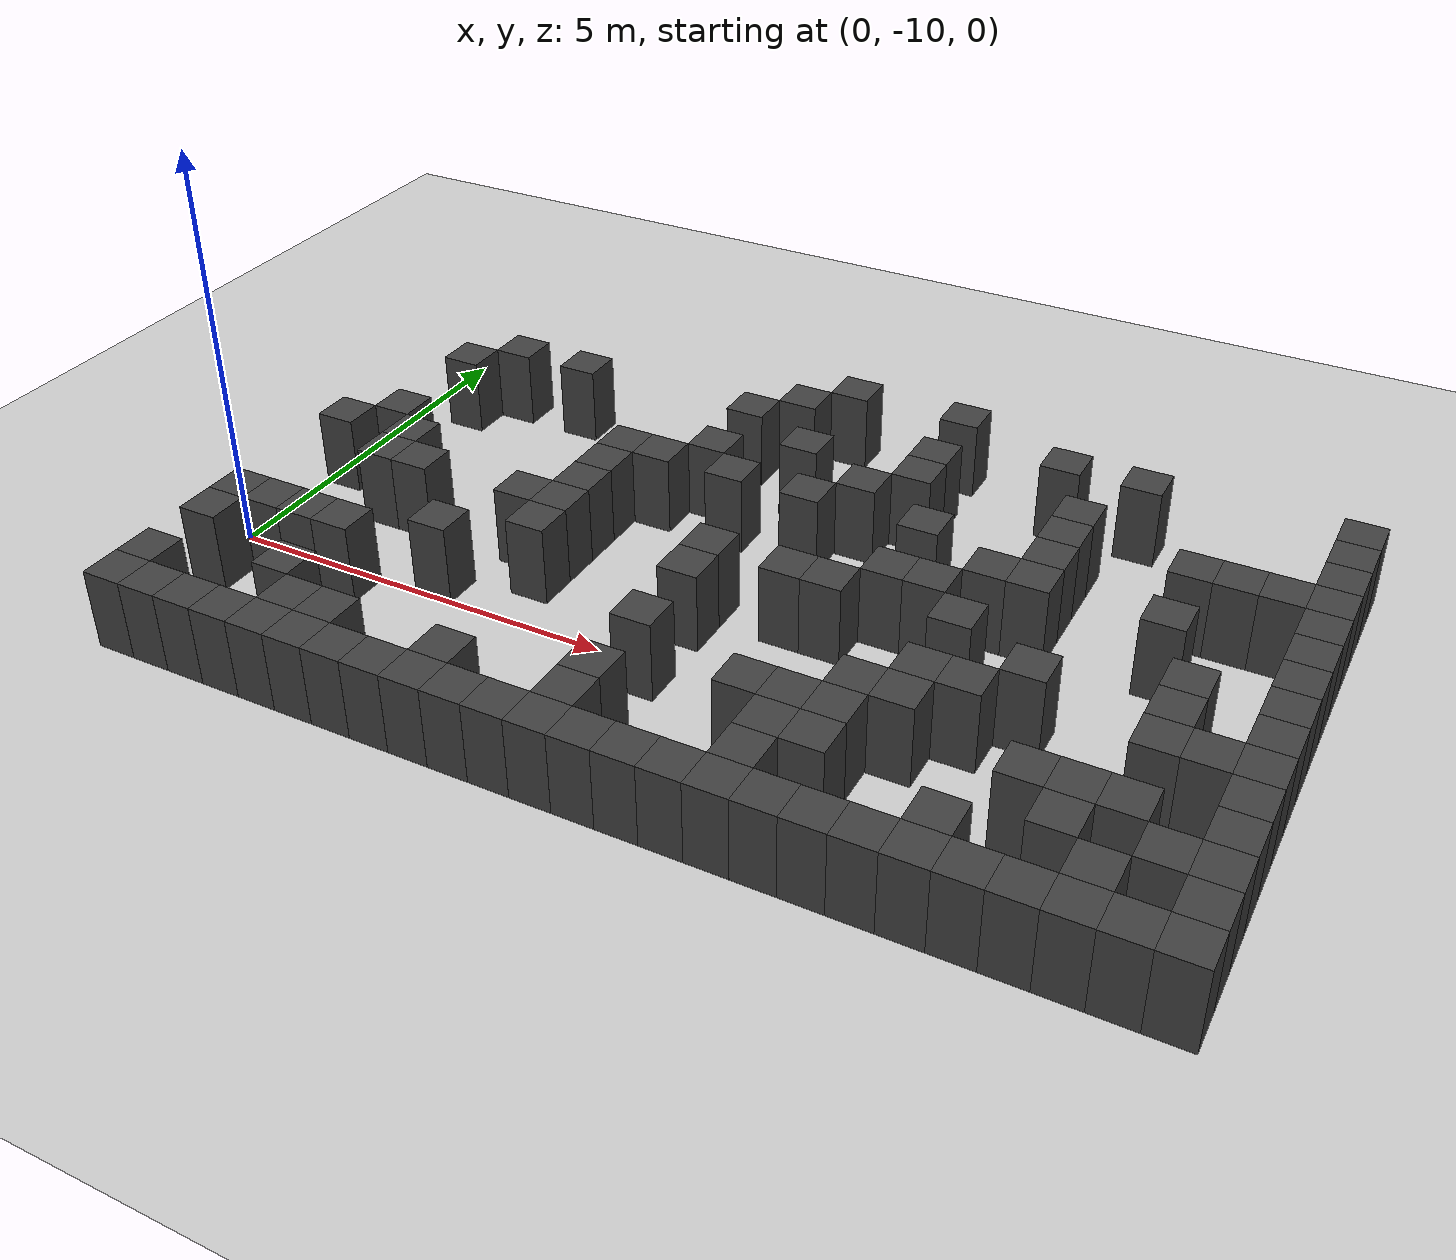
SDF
<sdf version="1.7">
 <world name="map_4822">
  <model name="ground_plane">
   <static>true</static>
   <link name="link">
    <collision name="collision">
     <geometry><plane><normal>0 0 1</normal><size>200 200</size></plane></geometry>
    </collision>
    <visual name="visual">
     <geometry><plane><normal>0 0 1</normal><size>200 200</size></plane></geometry>
     <material><ambient>0.8 0.8 0.8 1</ambient><diffuse>0.8 0.8 0.8 1</diffuse></material>
    </visual>
   </link>
  </model>
  <model name="maze_environment">
   <static>true</static>
   <link name="wall_484">
    <pose>5.750 -4.750 0.500 0 0 0</pose>
    <collision name="col"><geometry><box><size>0.5 0.5 1.0</size></box></geometry></collision>
    <visual name="vis">
     <geometry><box><size>0.5 0.5 1.0</size></box></geometry>
     <material><ambient>0.15 0.15 0.15 1</ambient><diffuse>0.25 0.25 0.25 1</diffuse></material>
    </visual>
   </link>
   <link name="wall_485">
    <pose>7.250 -4.750 0.500 0 0 0</pose>
    <collision name="col"><geometry><box><size>0.5 0.5 1.0</size></box></geometry></collision>
    <visual name="vis">
     <geometry><box><size>0.5 0.5 1.0</size></box></geometry>
     <material><ambient>0.15 0.15 0.15 1</ambient><diffuse>0.25 0.25 0.25 1</diffuse></material>
    </visual>
   </link>
   <link name="wall_498">
    <pose>5.250 -5.250 0.500 0 0 0</pose>
    <collision name="col"><geometry><box><size>0.5 0.5 1.0</size></box></geometry></collision>
    <visual name="vis">
     <geometry><box><size>0.5 0.5 1.0</size></box></geometry>
     <material><ambient>0.15 0.15 0.15 1</ambient><diffuse>0.25 0.25 0.25 1</diffuse></material>
    </visual>
   </link>
   <link name="wall_499">
    <pose>8.750 -5.250 0.500 0 0 0</pose>
    <collision name="col"><geometry><box><size>0.5 0.5 1.0</size></box></geometry></collision>
    <visual name="vis">
     <geometry><box><size>0.5 0.5 1.0</size></box></geometry>
     <material><ambient>0.15 0.15 0.15 1</ambient><diffuse>0.25 0.25 0.25 1</diffuse></material>
    </visual>
   </link>
   <link name="wall_500">
    <pose>9.750 -5.250 0.500 0 0 0</pose>
    <collision name="col"><geometry><box><size>0.5 0.5 1.0</size></box></geometry></collision>
    <visual name="vis">
     <geometry><box><size>0.5 0.5 1.0</size></box></geometry>
     <material><ambient>0.15 0.15 0.15 1</ambient><diffuse>0.25 0.25 0.25 1</diffuse></material>
    </visual>
   </link>
   <link name="wall_501">
    <pose>12.250 -5.250 0.500 0 0 0</pose>
    <collision name="col"><geometry><box><size>0.5 0.5 1.0</size></box></geometry></collision>
    <visual name="vis">
     <geometry><box><size>0.5 0.5 1.0</size></box></geometry>
     <material><ambient>0.15 0.15 0.15 1</ambient><diffuse>0.25 0.25 0.25 1</diffuse></material>
    </visual>
   </link>
   <link name="wall_508">
    <pose>1.250 -5.750 0.500 0 0 0</pose>
    <collision name="col"><geometry><box><size>0.5 0.5 1.0</size></box></geometry></collision>
    <visual name="vis">
     <geometry><box><size>0.5 0.5 1.0</size></box></geometry>
     <material><ambient>0.15 0.15 0.15 1</ambient><diffuse>0.25 0.25 0.25 1</diffuse></material>
    </visual>
   </link>
   <link name="wall_509">
    <pose>2.250 -5.750 0.500 0 0 0</pose>
    <collision name="col"><geometry><box><size>0.5 0.5 1.0</size></box></geometry></collision>
    <visual name="vis">
     <geometry><box><size>0.5 0.5 1.0</size></box></geometry>
     <material><ambient>0.15 0.15 0.15 1</ambient><diffuse>0.25 0.25 0.25 1</diffuse></material>
    </visual>
   </link>
   <link name="wall_510">
    <pose>4.750 -5.750 0.500 0 0 0</pose>
    <collision name="col"><geometry><box><size>0.5 0.5 1.0</size></box></geometry></collision>
    <visual name="vis">
     <geometry><box><size>0.5 0.5 1.0</size></box></geometry>
     <material><ambient>0.15 0.15 0.15 1</ambient><diffuse>0.25 0.25 0.25 1</diffuse></material>
    </visual>
   </link>
   <link name="wall_511">
    <pose>7.250 -5.750 0.500 0 0 0</pose>
    <collision name="col"><geometry><box><size>0.5 0.5 1.0</size></box></geometry></collision>
    <visual name="vis">
     <geometry><box><size>0.5 0.5 1.0</size></box></geometry>
     <material><ambient>0.15 0.15 0.15 1</ambient><diffuse>0.25 0.25 0.25 1</diffuse></material>
    </visual>
   </link>
   <link name="wall_512">
    <pose>12.250 -5.750 0.500 0 0 0</pose>
    <collision name="col"><geometry><box><size>0.5 0.5 1.0</size></box></geometry></collision>
    <visual name="vis">
     <geometry><box><size>0.5 0.5 1.0</size></box></geometry>
     <material><ambient>0.15 0.15 0.15 1</ambient><diffuse>0.25 0.25 0.25 1</diffuse></material>
    </visual>
   </link>
   <link name="wall_521">
    <pose>0.750 -6.250 0.500 0 0 0</pose>
    <collision name="col"><geometry><box><size>0.5 0.5 1.0</size></box></geometry></collision>
    <visual name="vis">
     <geometry><box><size>0.5 0.5 1.0</size></box></geometry>
     <material><ambient>0.15 0.15 0.15 1</ambient><diffuse>0.25 0.25 0.25 1</diffuse></material>
    </visual>
   </link>
   <link name="wall_522">
    <pose>5.750 -6.250 0.500 0 0 0</pose>
    <collision name="col"><geometry><box><size>0.5 0.5 1.0</size></box></geometry></collision>
    <visual name="vis">
     <geometry><box><size>0.5 0.5 1.0</size></box></geometry>
     <material><ambient>0.15 0.15 0.15 1</ambient><diffuse>0.25 0.25 0.25 1</diffuse></material>
    </visual>
   </link>
   <link name="wall_523">
    <pose>7.250 -6.250 0.500 0 0 0</pose>
    <collision name="col"><geometry><box><size>0.5 0.5 1.0</size></box></geometry></collision>
    <visual name="vis">
     <geometry><box><size>0.5 0.5 1.0</size></box></geometry>
     <material><ambient>0.15 0.15 0.15 1</ambient><diffuse>0.25 0.25 0.25 1</diffuse></material>
    </visual>
   </link>
   <link name="wall_524">
    <pose>9.250 -6.250 0.500 0 0 0</pose>
    <collision name="col"><geometry><box><size>0.5 0.5 1.0</size></box></geometry></collision>
    <visual name="vis">
     <geometry><box><size>0.5 0.5 1.0</size></box></geometry>
     <material><ambient>0.15 0.15 0.15 1</ambient><diffuse>0.25 0.25 0.25 1</diffuse></material>
    </visual>
   </link>
   <link name="wall_525">
    <pose>12.250 -6.250 0.500 0 0 0</pose>
    <collision name="col"><geometry><box><size>0.5 0.5 1.0</size></box></geometry></collision>
    <visual name="vis">
     <geometry><box><size>0.5 0.5 1.0</size></box></geometry>
     <material><ambient>0.15 0.15 0.15 1</ambient><diffuse>0.25 0.25 0.25 1</diffuse></material>
    </visual>
   </link>
   <link name="wall_533">
    <pose>4.750 -6.750 0.500 0 0 0</pose>
    <collision name="col"><geometry><box><size>0.5 0.5 1.0</size></box></geometry></collision>
    <visual name="vis">
     <geometry><box><size>0.5 0.5 1.0</size></box></geometry>
     <material><ambient>0.15 0.15 0.15 1</ambient><diffuse>0.25 0.25 0.25 1</diffuse></material>
    </visual>
   </link>
   <link name="wall_534">
    <pose>6.750 -6.750 0.500 0 0 0</pose>
    <collision name="col"><geometry><box><size>0.5 0.5 1.0</size></box></geometry></collision>
    <visual name="vis">
     <geometry><box><size>0.5 0.5 1.0</size></box></geometry>
     <material><ambient>0.15 0.15 0.15 1</ambient><diffuse>0.25 0.25 0.25 1</diffuse></material>
    </visual>
   </link>
   <link name="wall_535">
    <pose>9.250 -6.750 0.500 0 0 0</pose>
    <collision name="col"><geometry><box><size>0.5 0.5 1.0</size></box></geometry></collision>
    <visual name="vis">
     <geometry><box><size>0.5 0.5 1.0</size></box></geometry>
     <material><ambient>0.15 0.15 0.15 1</ambient><diffuse>0.25 0.25 0.25 1</diffuse></material>
    </visual>
   </link>
   <link name="wall_536">
    <pose>10.750 -6.750 0.500 0 0 0</pose>
    <collision name="col"><geometry><box><size>0.5 0.5 1.0</size></box></geometry></collision>
    <visual name="vis">
     <geometry><box><size>0.5 0.5 1.0</size></box></geometry>
     <material><ambient>0.15 0.15 0.15 1</ambient><diffuse>0.25 0.25 0.25 1</diffuse></material>
    </visual>
   </link>
   <link name="wall_537">
    <pose>11.250 -6.750 0.500 0 0 0</pose>
    <collision name="col"><geometry><box><size>0.5 0.5 1.0</size></box></geometry></collision>
    <visual name="vis">
     <geometry><box><size>0.5 0.5 1.0</size></box></geometry>
     <material><ambient>0.15 0.15 0.15 1</ambient><diffuse>0.25 0.25 0.25 1</diffuse></material>
    </visual>
   </link>
   <link name="wall_538">
    <pose>11.750 -6.750 0.500 0 0 0</pose>
    <collision name="col"><geometry><box><size>0.5 0.5 1.0</size></box></geometry></collision>
    <visual name="vis">
     <geometry><box><size>0.5 0.5 1.0</size></box></geometry>
     <material><ambient>0.15 0.15 0.15 1</ambient><diffuse>0.25 0.25 0.25 1</diffuse></material>
    </visual>
   </link>
   <link name="wall_539">
    <pose>12.250 -6.750 0.500 0 0 0</pose>
    <collision name="col"><geometry><box><size>0.5 0.5 1.0</size></box></geometry></collision>
    <visual name="vis">
     <geometry><box><size>0.5 0.5 1.0</size></box></geometry>
     <material><ambient>0.15 0.15 0.15 1</ambient><diffuse>0.25 0.25 0.25 1</diffuse></material>
    </visual>
   </link>
   <link name="wall_546">
    <pose>3.750 -7.250 0.500 0 0 0</pose>
    <collision name="col"><geometry><box><size>0.5 0.5 1.0</size></box></geometry></collision>
    <visual name="vis">
     <geometry><box><size>0.5 0.5 1.0</size></box></geometry>
     <material><ambient>0.15 0.15 0.15 1</ambient><diffuse>0.25 0.25 0.25 1</diffuse></material>
    </visual>
   </link>
   <link name="wall_547">
    <pose>4.250 -7.250 0.500 0 0 0</pose>
    <collision name="col"><geometry><box><size>0.5 0.5 1.0</size></box></geometry></collision>
    <visual name="vis">
     <geometry><box><size>0.5 0.5 1.0</size></box></geometry>
     <material><ambient>0.15 0.15 0.15 1</ambient><diffuse>0.25 0.25 0.25 1</diffuse></material>
    </visual>
   </link>
   <link name="wall_548">
    <pose>5.250 -7.250 0.500 0 0 0</pose>
    <collision name="col"><geometry><box><size>0.5 0.5 1.0</size></box></geometry></collision>
    <visual name="vis">
     <geometry><box><size>0.5 0.5 1.0</size></box></geometry>
     <material><ambient>0.15 0.15 0.15 1</ambient><diffuse>0.25 0.25 0.25 1</diffuse></material>
    </visual>
   </link>
   <link name="wall_549">
    <pose>6.250 -7.250 0.500 0 0 0</pose>
    <collision name="col"><geometry><box><size>0.5 0.5 1.0</size></box></geometry></collision>
    <visual name="vis">
     <geometry><box><size>0.5 0.5 1.0</size></box></geometry>
     <material><ambient>0.15 0.15 0.15 1</ambient><diffuse>0.25 0.25 0.25 1</diffuse></material>
    </visual>
   </link>
   <link name="wall_550">
    <pose>7.750 -7.250 0.500 0 0 0</pose>
    <collision name="col"><geometry><box><size>0.5 0.5 1.0</size></box></geometry></collision>
    <visual name="vis">
     <geometry><box><size>0.5 0.5 1.0</size></box></geometry>
     <material><ambient>0.15 0.15 0.15 1</ambient><diffuse>0.25 0.25 0.25 1</diffuse></material>
    </visual>
   </link>
   <link name="wall_551">
    <pose>9.250 -7.250 0.500 0 0 0</pose>
    <collision name="col"><geometry><box><size>0.5 0.5 1.0</size></box></geometry></collision>
    <visual name="vis">
     <geometry><box><size>0.5 0.5 1.0</size></box></geometry>
     <material><ambient>0.15 0.15 0.15 1</ambient><diffuse>0.25 0.25 0.25 1</diffuse></material>
    </visual>
   </link>
   <link name="wall_552">
    <pose>12.250 -7.250 0.500 0 0 0</pose>
    <collision name="col"><geometry><box><size>0.5 0.5 1.0</size></box></geometry></collision>
    <visual name="vis">
     <geometry><box><size>0.5 0.5 1.0</size></box></geometry>
     <material><ambient>0.15 0.15 0.15 1</ambient><diffuse>0.25 0.25 0.25 1</diffuse></material>
    </visual>
   </link>
   <link name="wall_555">
    <pose>0.750 -7.750 0.500 0 0 0</pose>
    <collision name="col"><geometry><box><size>0.5 0.5 1.0</size></box></geometry></collision>
    <visual name="vis">
     <geometry><box><size>0.5 0.5 1.0</size></box></geometry>
     <material><ambient>0.15 0.15 0.15 1</ambient><diffuse>0.25 0.25 0.25 1</diffuse></material>
    </visual>
   </link>
   <link name="wall_556">
    <pose>3.750 -7.750 0.500 0 0 0</pose>
    <collision name="col"><geometry><box><size>0.5 0.5 1.0</size></box></geometry></collision>
    <visual name="vis">
     <geometry><box><size>0.5 0.5 1.0</size></box></geometry>
     <material><ambient>0.15 0.15 0.15 1</ambient><diffuse>0.25 0.25 0.25 1</diffuse></material>
    </visual>
   </link>
   <link name="wall_557">
    <pose>8.750 -7.750 0.500 0 0 0</pose>
    <collision name="col"><geometry><box><size>0.5 0.5 1.0</size></box></geometry></collision>
    <visual name="vis">
     <geometry><box><size>0.5 0.5 1.0</size></box></geometry>
     <material><ambient>0.15 0.15 0.15 1</ambient><diffuse>0.25 0.25 0.25 1</diffuse></material>
    </visual>
   </link>
   <link name="wall_558">
    <pose>9.250 -7.750 0.500 0 0 0</pose>
    <collision name="col"><geometry><box><size>0.5 0.5 1.0</size></box></geometry></collision>
    <visual name="vis">
     <geometry><box><size>0.5 0.5 1.0</size></box></geometry>
     <material><ambient>0.15 0.15 0.15 1</ambient><diffuse>0.25 0.25 0.25 1</diffuse></material>
    </visual>
   </link>
   <link name="wall_559">
    <pose>10.750 -7.750 0.500 0 0 0</pose>
    <collision name="col"><geometry><box><size>0.5 0.5 1.0</size></box></geometry></collision>
    <visual name="vis">
     <geometry><box><size>0.5 0.5 1.0</size></box></geometry>
     <material><ambient>0.15 0.15 0.15 1</ambient><diffuse>0.25 0.25 0.25 1</diffuse></material>
    </visual>
   </link>
   <link name="wall_560">
    <pose>12.250 -7.750 0.500 0 0 0</pose>
    <collision name="col"><geometry><box><size>0.5 0.5 1.0</size></box></geometry></collision>
    <visual name="vis">
     <geometry><box><size>0.5 0.5 1.0</size></box></geometry>
     <material><ambient>0.15 0.15 0.15 1</ambient><diffuse>0.25 0.25 0.25 1</diffuse></material>
    </visual>
   </link>
   <link name="wall_566">
    <pose>0.250 -8.250 0.500 0 0 0</pose>
    <collision name="col"><geometry><box><size>0.5 0.5 1.0</size></box></geometry></collision>
    <visual name="vis">
     <geometry><box><size>0.5 0.5 1.0</size></box></geometry>
     <material><ambient>0.15 0.15 0.15 1</ambient><diffuse>0.25 0.25 0.25 1</diffuse></material>
    </visual>
   </link>
   <link name="wall_567">
    <pose>1.250 -8.250 0.500 0 0 0</pose>
    <collision name="col"><geometry><box><size>0.5 0.5 1.0</size></box></geometry></collision>
    <visual name="vis">
     <geometry><box><size>0.5 0.5 1.0</size></box></geometry>
     <material><ambient>0.15 0.15 0.15 1</ambient><diffuse>0.25 0.25 0.25 1</diffuse></material>
    </visual>
   </link>
   <link name="wall_568">
    <pose>3.750 -8.250 0.500 0 0 0</pose>
    <collision name="col"><geometry><box><size>0.5 0.5 1.0</size></box></geometry></collision>
    <visual name="vis">
     <geometry><box><size>0.5 0.5 1.0</size></box></geometry>
     <material><ambient>0.15 0.15 0.15 1</ambient><diffuse>0.25 0.25 0.25 1</diffuse></material>
    </visual>
   </link>
   <link name="wall_569">
    <pose>7.750 -8.250 0.500 0 0 0</pose>
    <collision name="col"><geometry><box><size>0.5 0.5 1.0</size></box></geometry></collision>
    <visual name="vis">
     <geometry><box><size>0.5 0.5 1.0</size></box></geometry>
     <material><ambient>0.15 0.15 0.15 1</ambient><diffuse>0.25 0.25 0.25 1</diffuse></material>
    </visual>
   </link>
   <link name="wall_570">
    <pose>8.250 -8.250 0.500 0 0 0</pose>
    <collision name="col"><geometry><box><size>0.5 0.5 1.0</size></box></geometry></collision>
    <visual name="vis">
     <geometry><box><size>0.5 0.5 1.0</size></box></geometry>
     <material><ambient>0.15 0.15 0.15 1</ambient><diffuse>0.25 0.25 0.25 1</diffuse></material>
    </visual>
   </link>
   <link name="wall_571">
    <pose>12.250 -8.250 0.500 0 0 0</pose>
    <collision name="col"><geometry><box><size>0.5 0.5 1.0</size></box></geometry></collision>
    <visual name="vis">
     <geometry><box><size>0.5 0.5 1.0</size></box></geometry>
     <material><ambient>0.15 0.15 0.15 1</ambient><diffuse>0.25 0.25 0.25 1</diffuse></material>
    </visual>
   </link>
   <link name="wall_580">
    <pose>1.250 -8.750 0.500 0 0 0</pose>
    <collision name="col"><geometry><box><size>0.5 0.5 1.0</size></box></geometry></collision>
    <visual name="vis">
     <geometry><box><size>0.5 0.5 1.0</size></box></geometry>
     <material><ambient>0.15 0.15 0.15 1</ambient><diffuse>0.25 0.25 0.25 1</diffuse></material>
    </visual>
   </link>
   <link name="wall_581">
    <pose>1.750 -8.750 0.500 0 0 0</pose>
    <collision name="col"><geometry><box><size>0.5 0.5 1.0</size></box></geometry></collision>
    <visual name="vis">
     <geometry><box><size>0.5 0.5 1.0</size></box></geometry>
     <material><ambient>0.15 0.15 0.15 1</ambient><diffuse>0.25 0.25 0.25 1</diffuse></material>
    </visual>
   </link>
   <link name="wall_582">
    <pose>3.250 -8.750 0.500 0 0 0</pose>
    <collision name="col"><geometry><box><size>0.5 0.5 1.0</size></box></geometry></collision>
    <visual name="vis">
     <geometry><box><size>0.5 0.5 1.0</size></box></geometry>
     <material><ambient>0.15 0.15 0.15 1</ambient><diffuse>0.25 0.25 0.25 1</diffuse></material>
    </visual>
   </link>
   <link name="wall_583">
    <pose>3.750 -8.750 0.500 0 0 0</pose>
    <collision name="col"><geometry><box><size>0.5 0.5 1.0</size></box></geometry></collision>
    <visual name="vis">
     <geometry><box><size>0.5 0.5 1.0</size></box></geometry>
     <material><ambient>0.15 0.15 0.15 1</ambient><diffuse>0.25 0.25 0.25 1</diffuse></material>
    </visual>
   </link>
   <link name="wall_584">
    <pose>5.750 -8.750 0.500 0 0 0</pose>
    <collision name="col"><geometry><box><size>0.5 0.5 1.0</size></box></geometry></collision>
    <visual name="vis">
     <geometry><box><size>0.5 0.5 1.0</size></box></geometry>
     <material><ambient>0.15 0.15 0.15 1</ambient><diffuse>0.25 0.25 0.25 1</diffuse></material>
    </visual>
   </link>
   <link name="wall_585">
    <pose>6.750 -8.750 0.500 0 0 0</pose>
    <collision name="col"><geometry><box><size>0.5 0.5 1.0</size></box></geometry></collision>
    <visual name="vis">
     <geometry><box><size>0.5 0.5 1.0</size></box></geometry>
     <material><ambient>0.15 0.15 0.15 1</ambient><diffuse>0.25 0.25 0.25 1</diffuse></material>
    </visual>
   </link>
   <link name="wall_586">
    <pose>7.250 -8.750 0.500 0 0 0</pose>
    <collision name="col"><geometry><box><size>0.5 0.5 1.0</size></box></geometry></collision>
    <visual name="vis">
     <geometry><box><size>0.5 0.5 1.0</size></box></geometry>
     <material><ambient>0.15 0.15 0.15 1</ambient><diffuse>0.25 0.25 0.25 1</diffuse></material>
    </visual>
   </link>
   <link name="wall_587">
    <pose>8.750 -8.750 0.500 0 0 0</pose>
    <collision name="col"><geometry><box><size>0.5 0.5 1.0</size></box></geometry></collision>
    <visual name="vis">
     <geometry><box><size>0.5 0.5 1.0</size></box></geometry>
     <material><ambient>0.15 0.15 0.15 1</ambient><diffuse>0.25 0.25 0.25 1</diffuse></material>
    </visual>
   </link>
   <link name="wall_588">
    <pose>11.250 -8.750 0.500 0 0 0</pose>
    <collision name="col"><geometry><box><size>0.5 0.5 1.0</size></box></geometry></collision>
    <visual name="vis">
     <geometry><box><size>0.5 0.5 1.0</size></box></geometry>
     <material><ambient>0.15 0.15 0.15 1</ambient><diffuse>0.25 0.25 0.25 1</diffuse></material>
    </visual>
   </link>
   <link name="wall_589">
    <pose>12.250 -8.750 0.500 0 0 0</pose>
    <collision name="col"><geometry><box><size>0.5 0.5 1.0</size></box></geometry></collision>
    <visual name="vis">
     <geometry><box><size>0.5 0.5 1.0</size></box></geometry>
     <material><ambient>0.15 0.15 0.15 1</ambient><diffuse>0.25 0.25 0.25 1</diffuse></material>
    </visual>
   </link>
   <link name="wall_598">
    <pose>3.750 -9.250 0.500 0 0 0</pose>
    <collision name="col"><geometry><box><size>0.5 0.5 1.0</size></box></geometry></collision>
    <visual name="vis">
     <geometry><box><size>0.5 0.5 1.0</size></box></geometry>
     <material><ambient>0.15 0.15 0.15 1</ambient><diffuse>0.25 0.25 0.25 1</diffuse></material>
    </visual>
   </link>
   <link name="wall_599">
    <pose>5.750 -9.250 0.500 0 0 0</pose>
    <collision name="col"><geometry><box><size>0.5 0.5 1.0</size></box></geometry></collision>
    <visual name="vis">
     <geometry><box><size>0.5 0.5 1.0</size></box></geometry>
     <material><ambient>0.15 0.15 0.15 1</ambient><diffuse>0.25 0.25 0.25 1</diffuse></material>
    </visual>
   </link>
   <link name="wall_600">
    <pose>9.750 -9.250 0.500 0 0 0</pose>
    <collision name="col"><geometry><box><size>0.5 0.5 1.0</size></box></geometry></collision>
    <visual name="vis">
     <geometry><box><size>0.5 0.5 1.0</size></box></geometry>
     <material><ambient>0.15 0.15 0.15 1</ambient><diffuse>0.25 0.25 0.25 1</diffuse></material>
    </visual>
   </link>
   <link name="wall_601">
    <pose>11.250 -9.250 0.500 0 0 0</pose>
    <collision name="col"><geometry><box><size>0.5 0.5 1.0</size></box></geometry></collision>
    <visual name="vis">
     <geometry><box><size>0.5 0.5 1.0</size></box></geometry>
     <material><ambient>0.15 0.15 0.15 1</ambient><diffuse>0.25 0.25 0.25 1</diffuse></material>
    </visual>
   </link>
   <link name="wall_602">
    <pose>12.250 -9.250 0.500 0 0 0</pose>
    <collision name="col"><geometry><box><size>0.5 0.5 1.0</size></box></geometry></collision>
    <visual name="vis">
     <geometry><box><size>0.5 0.5 1.0</size></box></geometry>
     <material><ambient>0.15 0.15 0.15 1</ambient><diffuse>0.25 0.25 0.25 1</diffuse></material>
    </visual>
   </link>
   <link name="wall_606">
    <pose>2.750 -9.750 0.500 0 0 0</pose>
    <collision name="col"><geometry><box><size>0.5 0.5 1.0</size></box></geometry></collision>
    <visual name="vis">
     <geometry><box><size>0.5 0.5 1.0</size></box></geometry>
     <material><ambient>0.15 0.15 0.15 1</ambient><diffuse>0.25 0.25 0.25 1</diffuse></material>
    </visual>
   </link>
   <link name="wall_607">
    <pose>8.750 -9.750 0.500 0 0 0</pose>
    <collision name="col"><geometry><box><size>0.5 0.5 1.0</size></box></geometry></collision>
    <visual name="vis">
     <geometry><box><size>0.5 0.5 1.0</size></box></geometry>
     <material><ambient>0.15 0.15 0.15 1</ambient><diffuse>0.25 0.25 0.25 1</diffuse></material>
    </visual>
   </link>
   <link name="wall_608">
    <pose>9.250 -9.750 0.500 0 0 0</pose>
    <collision name="col"><geometry><box><size>0.5 0.5 1.0</size></box></geometry></collision>
    <visual name="vis">
     <geometry><box><size>0.5 0.5 1.0</size></box></geometry>
     <material><ambient>0.15 0.15 0.15 1</ambient><diffuse>0.25 0.25 0.25 1</diffuse></material>
    </visual>
   </link>
   <link name="wall_609">
    <pose>11.250 -9.750 0.500 0 0 0</pose>
    <collision name="col"><geometry><box><size>0.5 0.5 1.0</size></box></geometry></collision>
    <visual name="vis">
     <geometry><box><size>0.5 0.5 1.0</size></box></geometry>
     <material><ambient>0.15 0.15 0.15 1</ambient><diffuse>0.25 0.25 0.25 1</diffuse></material>
    </visual>
   </link>
   <link name="wall_610">
    <pose>11.750 -9.750 0.500 0 0 0</pose>
    <collision name="col"><geometry><box><size>0.5 0.5 1.0</size></box></geometry></collision>
    <visual name="vis">
     <geometry><box><size>0.5 0.5 1.0</size></box></geometry>
     <material><ambient>0.15 0.15 0.15 1</ambient><diffuse>0.25 0.25 0.25 1</diffuse></material>
    </visual>
   </link>
   <link name="wall_611">
    <pose>12.250 -9.750 0.500 0 0 0</pose>
    <collision name="col"><geometry><box><size>0.5 0.5 1.0</size></box></geometry></collision>
    <visual name="vis">
     <geometry><box><size>0.5 0.5 1.0</size></box></geometry>
     <material><ambient>0.15 0.15 0.15 1</ambient><diffuse>0.25 0.25 0.25 1</diffuse></material>
    </visual>
   </link>
   <link name="wall_619">
    <pose>0.250 -10.250 0.500 0 0 0</pose>
    <collision name="col"><geometry><box><size>0.5 0.5 1.0</size></box></geometry></collision>
    <visual name="vis">
     <geometry><box><size>0.5 0.5 1.0</size></box></geometry>
     <material><ambient>0.15 0.15 0.15 1</ambient><diffuse>0.25 0.25 0.25 1</diffuse></material>
    </visual>
   </link>
   <link name="wall_620">
    <pose>0.750 -10.250 0.500 0 0 0</pose>
    <collision name="col"><geometry><box><size>0.5 0.5 1.0</size></box></geometry></collision>
    <visual name="vis">
     <geometry><box><size>0.5 0.5 1.0</size></box></geometry>
     <material><ambient>0.15 0.15 0.15 1</ambient><diffuse>0.25 0.25 0.25 1</diffuse></material>
    </visual>
   </link>
   <link name="wall_621">
    <pose>1.250 -10.250 0.500 0 0 0</pose>
    <collision name="col"><geometry><box><size>0.5 0.5 1.0</size></box></geometry></collision>
    <visual name="vis">
     <geometry><box><size>0.5 0.5 1.0</size></box></geometry>
     <material><ambient>0.15 0.15 0.15 1</ambient><diffuse>0.25 0.25 0.25 1</diffuse></material>
    </visual>
   </link>
   <link name="wall_622">
    <pose>1.750 -10.250 0.500 0 0 0</pose>
    <collision name="col"><geometry><box><size>0.5 0.5 1.0</size></box></geometry></collision>
    <visual name="vis">
     <geometry><box><size>0.5 0.5 1.0</size></box></geometry>
     <material><ambient>0.15 0.15 0.15 1</ambient><diffuse>0.25 0.25 0.25 1</diffuse></material>
    </visual>
   </link>
   <link name="wall_623">
    <pose>5.750 -10.250 0.500 0 0 0</pose>
    <collision name="col"><geometry><box><size>0.5 0.5 1.0</size></box></geometry></collision>
    <visual name="vis">
     <geometry><box><size>0.5 0.5 1.0</size></box></geometry>
     <material><ambient>0.15 0.15 0.15 1</ambient><diffuse>0.25 0.25 0.25 1</diffuse></material>
    </visual>
   </link>
   <link name="wall_624">
    <pose>8.250 -10.250 0.500 0 0 0</pose>
    <collision name="col"><geometry><box><size>0.5 0.5 1.0</size></box></geometry></collision>
    <visual name="vis">
     <geometry><box><size>0.5 0.5 1.0</size></box></geometry>
     <material><ambient>0.15 0.15 0.15 1</ambient><diffuse>0.25 0.25 0.25 1</diffuse></material>
    </visual>
   </link>
   <link name="wall_625">
    <pose>8.750 -10.250 0.500 0 0 0</pose>
    <collision name="col"><geometry><box><size>0.5 0.5 1.0</size></box></geometry></collision>
    <visual name="vis">
     <geometry><box><size>0.5 0.5 1.0</size></box></geometry>
     <material><ambient>0.15 0.15 0.15 1</ambient><diffuse>0.25 0.25 0.25 1</diffuse></material>
    </visual>
   </link>
   <link name="wall_626">
    <pose>12.250 -10.250 0.500 0 0 0</pose>
    <collision name="col"><geometry><box><size>0.5 0.5 1.0</size></box></geometry></collision>
    <visual name="vis">
     <geometry><box><size>0.5 0.5 1.0</size></box></geometry>
     <material><ambient>0.15 0.15 0.15 1</ambient><diffuse>0.25 0.25 0.25 1</diffuse></material>
    </visual>
   </link>
   <link name="wall_638">
    <pose>0.250 -10.750 0.500 0 0 0</pose>
    <collision name="col"><geometry><box><size>0.5 0.5 1.0</size></box></geometry></collision>
    <visual name="vis">
     <geometry><box><size>0.5 0.5 1.0</size></box></geometry>
     <material><ambient>0.15 0.15 0.15 1</ambient><diffuse>0.25 0.25 0.25 1</diffuse></material>
    </visual>
   </link>
   <link name="wall_639">
    <pose>7.250 -10.750 0.500 0 0 0</pose>
    <collision name="col"><geometry><box><size>0.5 0.5 1.0</size></box></geometry></collision>
    <visual name="vis">
     <geometry><box><size>0.5 0.5 1.0</size></box></geometry>
     <material><ambient>0.15 0.15 0.15 1</ambient><diffuse>0.25 0.25 0.25 1</diffuse></material>
    </visual>
   </link>
   <link name="wall_640">
    <pose>7.750 -10.750 0.500 0 0 0</pose>
    <collision name="col"><geometry><box><size>0.5 0.5 1.0</size></box></geometry></collision>
    <visual name="vis">
     <geometry><box><size>0.5 0.5 1.0</size></box></geometry>
     <material><ambient>0.15 0.15 0.15 1</ambient><diffuse>0.25 0.25 0.25 1</diffuse></material>
    </visual>
   </link>
   <link name="wall_641">
    <pose>8.250 -10.750 0.500 0 0 0</pose>
    <collision name="col"><geometry><box><size>0.5 0.5 1.0</size></box></geometry></collision>
    <visual name="vis">
     <geometry><box><size>0.5 0.5 1.0</size></box></geometry>
     <material><ambient>0.15 0.15 0.15 1</ambient><diffuse>0.25 0.25 0.25 1</diffuse></material>
    </visual>
   </link>
   <link name="wall_642">
    <pose>10.250 -10.750 0.500 0 0 0</pose>
    <collision name="col"><geometry><box><size>0.5 0.5 1.0</size></box></geometry></collision>
    <visual name="vis">
     <geometry><box><size>0.5 0.5 1.0</size></box></geometry>
     <material><ambient>0.15 0.15 0.15 1</ambient><diffuse>0.25 0.25 0.25 1</diffuse></material>
    </visual>
   </link>
   <link name="wall_643">
    <pose>10.750 -10.750 0.500 0 0 0</pose>
    <collision name="col"><geometry><box><size>0.5 0.5 1.0</size></box></geometry></collision>
    <visual name="vis">
     <geometry><box><size>0.5 0.5 1.0</size></box></geometry>
     <material><ambient>0.15 0.15 0.15 1</ambient><diffuse>0.25 0.25 0.25 1</diffuse></material>
    </visual>
   </link>
   <link name="wall_644">
    <pose>11.250 -10.750 0.500 0 0 0</pose>
    <collision name="col"><geometry><box><size>0.5 0.5 1.0</size></box></geometry></collision>
    <visual name="vis">
     <geometry><box><size>0.5 0.5 1.0</size></box></geometry>
     <material><ambient>0.15 0.15 0.15 1</ambient><diffuse>0.25 0.25 0.25 1</diffuse></material>
    </visual>
   </link>
   <link name="wall_645">
    <pose>12.250 -10.750 0.500 0 0 0</pose>
    <collision name="col"><geometry><box><size>0.5 0.5 1.0</size></box></geometry></collision>
    <visual name="vis">
     <geometry><box><size>0.5 0.5 1.0</size></box></geometry>
     <material><ambient>0.15 0.15 0.15 1</ambient><diffuse>0.25 0.25 0.25 1</diffuse></material>
    </visual>
   </link>
   <link name="wall_653">
    <pose>1.750 -11.250 0.500 0 0 0</pose>
    <collision name="col"><geometry><box><size>0.5 0.5 1.0</size></box></geometry></collision>
    <visual name="vis">
     <geometry><box><size>0.5 0.5 1.0</size></box></geometry>
     <material><ambient>0.15 0.15 0.15 1</ambient><diffuse>0.25 0.25 0.25 1</diffuse></material>
    </visual>
   </link>
   <link name="wall_654">
    <pose>5.750 -11.250 0.500 0 0 0</pose>
    <collision name="col"><geometry><box><size>0.5 0.5 1.0</size></box></geometry></collision>
    <visual name="vis">
     <geometry><box><size>0.5 0.5 1.0</size></box></geometry>
     <material><ambient>0.15 0.15 0.15 1</ambient><diffuse>0.25 0.25 0.25 1</diffuse></material>
    </visual>
   </link>
   <link name="wall_655">
    <pose>7.750 -11.250 0.500 0 0 0</pose>
    <collision name="col"><geometry><box><size>0.5 0.5 1.0</size></box></geometry></collision>
    <visual name="vis">
     <geometry><box><size>0.5 0.5 1.0</size></box></geometry>
     <material><ambient>0.15 0.15 0.15 1</ambient><diffuse>0.25 0.25 0.25 1</diffuse></material>
    </visual>
   </link>
   <link name="wall_656">
    <pose>8.250 -11.250 0.500 0 0 0</pose>
    <collision name="col"><geometry><box><size>0.5 0.5 1.0</size></box></geometry></collision>
    <visual name="vis">
     <geometry><box><size>0.5 0.5 1.0</size></box></geometry>
     <material><ambient>0.15 0.15 0.15 1</ambient><diffuse>0.25 0.25 0.25 1</diffuse></material>
    </visual>
   </link>
   <link name="wall_657">
    <pose>10.750 -11.250 0.500 0 0 0</pose>
    <collision name="col"><geometry><box><size>0.5 0.5 1.0</size></box></geometry></collision>
    <visual name="vis">
     <geometry><box><size>0.5 0.5 1.0</size></box></geometry>
     <material><ambient>0.15 0.15 0.15 1</ambient><diffuse>0.25 0.25 0.25 1</diffuse></material>
    </visual>
   </link>
   <link name="wall_658">
    <pose>11.750 -11.250 0.500 0 0 0</pose>
    <collision name="col"><geometry><box><size>0.5 0.5 1.0</size></box></geometry></collision>
    <visual name="vis">
     <geometry><box><size>0.5 0.5 1.0</size></box></geometry>
     <material><ambient>0.15 0.15 0.15 1</ambient><diffuse>0.25 0.25 0.25 1</diffuse></material>
    </visual>
   </link>
   <link name="wall_659">
    <pose>12.250 -11.250 0.500 0 0 0</pose>
    <collision name="col"><geometry><box><size>0.5 0.5 1.0</size></box></geometry></collision>
    <visual name="vis">
     <geometry><box><size>0.5 0.5 1.0</size></box></geometry>
     <material><ambient>0.15 0.15 0.15 1</ambient><diffuse>0.25 0.25 0.25 1</diffuse></material>
    </visual>
   </link>
   <link name="wall_667">
    <pose>0.250 -11.750 0.500 0 0 0</pose>
    <collision name="col"><geometry><box><size>0.5 0.5 1.0</size></box></geometry></collision>
    <visual name="vis">
     <geometry><box><size>0.5 0.5 1.0</size></box></geometry>
     <material><ambient>0.15 0.15 0.15 1</ambient><diffuse>0.25 0.25 0.25 1</diffuse></material>
    </visual>
   </link>
   <link name="wall_668">
    <pose>2.250 -11.750 0.500 0 0 0</pose>
    <collision name="col"><geometry><box><size>0.5 0.5 1.0</size></box></geometry></collision>
    <visual name="vis">
     <geometry><box><size>0.5 0.5 1.0</size></box></geometry>
     <material><ambient>0.15 0.15 0.15 1</ambient><diffuse>0.25 0.25 0.25 1</diffuse></material>
    </visual>
   </link>
   <link name="wall_669">
    <pose>2.750 -11.750 0.500 0 0 0</pose>
    <collision name="col"><geometry><box><size>0.5 0.5 1.0</size></box></geometry></collision>
    <visual name="vis">
     <geometry><box><size>0.5 0.5 1.0</size></box></geometry>
     <material><ambient>0.15 0.15 0.15 1</ambient><diffuse>0.25 0.25 0.25 1</diffuse></material>
    </visual>
   </link>
   <link name="wall_670">
    <pose>4.250 -11.750 0.500 0 0 0</pose>
    <collision name="col"><geometry><box><size>0.5 0.5 1.0</size></box></geometry></collision>
    <visual name="vis">
     <geometry><box><size>0.5 0.5 1.0</size></box></geometry>
     <material><ambient>0.15 0.15 0.15 1</ambient><diffuse>0.25 0.25 0.25 1</diffuse></material>
    </visual>
   </link>
   <link name="wall_671">
    <pose>5.750 -11.750 0.500 0 0 0</pose>
    <collision name="col"><geometry><box><size>0.5 0.5 1.0</size></box></geometry></collision>
    <visual name="vis">
     <geometry><box><size>0.5 0.5 1.0</size></box></geometry>
     <material><ambient>0.15 0.15 0.15 1</ambient><diffuse>0.25 0.25 0.25 1</diffuse></material>
    </visual>
   </link>
   <link name="wall_672">
    <pose>7.750 -11.750 0.500 0 0 0</pose>
    <collision name="col"><geometry><box><size>0.5 0.5 1.0</size></box></geometry></collision>
    <visual name="vis">
     <geometry><box><size>0.5 0.5 1.0</size></box></geometry>
     <material><ambient>0.15 0.15 0.15 1</ambient><diffuse>0.25 0.25 0.25 1</diffuse></material>
    </visual>
   </link>
   <link name="wall_673">
    <pose>9.750 -11.750 0.500 0 0 0</pose>
    <collision name="col"><geometry><box><size>0.5 0.5 1.0</size></box></geometry></collision>
    <visual name="vis">
     <geometry><box><size>0.5 0.5 1.0</size></box></geometry>
     <material><ambient>0.15 0.15 0.15 1</ambient><diffuse>0.25 0.25 0.25 1</diffuse></material>
    </visual>
   </link>
   <link name="wall_674">
    <pose>11.250 -11.750 0.500 0 0 0</pose>
    <collision name="col"><geometry><box><size>0.5 0.5 1.0</size></box></geometry></collision>
    <visual name="vis">
     <geometry><box><size>0.5 0.5 1.0</size></box></geometry>
     <material><ambient>0.15 0.15 0.15 1</ambient><diffuse>0.25 0.25 0.25 1</diffuse></material>
    </visual>
   </link>
   <link name="wall_675">
    <pose>12.250 -11.750 0.500 0 0 0</pose>
    <collision name="col"><geometry><box><size>0.5 0.5 1.0</size></box></geometry></collision>
    <visual name="vis">
     <geometry><box><size>0.5 0.5 1.0</size></box></geometry>
     <material><ambient>0.15 0.15 0.15 1</ambient><diffuse>0.25 0.25 0.25 1</diffuse></material>
    </visual>
   </link>
   <link name="wall_701">
    <pose>0.250 -12.250 0.500 0 0 0</pose>
    <collision name="col"><geometry><box><size>0.5 0.5 1.0</size></box></geometry></collision>
    <visual name="vis">
     <geometry><box><size>0.5 0.5 1.0</size></box></geometry>
     <material><ambient>0.15 0.15 0.15 1</ambient><diffuse>0.25 0.25 0.25 1</diffuse></material>
    </visual>
   </link>
   <link name="wall_702">
    <pose>0.750 -12.250 0.500 0 0 0</pose>
    <collision name="col"><geometry><box><size>0.5 0.5 1.0</size></box></geometry></collision>
    <visual name="vis">
     <geometry><box><size>0.5 0.5 1.0</size></box></geometry>
     <material><ambient>0.15 0.15 0.15 1</ambient><diffuse>0.25 0.25 0.25 1</diffuse></material>
    </visual>
   </link>
   <link name="wall_703">
    <pose>1.250 -12.250 0.500 0 0 0</pose>
    <collision name="col"><geometry><box><size>0.5 0.5 1.0</size></box></geometry></collision>
    <visual name="vis">
     <geometry><box><size>0.5 0.5 1.0</size></box></geometry>
     <material><ambient>0.15 0.15 0.15 1</ambient><diffuse>0.25 0.25 0.25 1</diffuse></material>
    </visual>
   </link>
   <link name="wall_704">
    <pose>1.750 -12.250 0.500 0 0 0</pose>
    <collision name="col"><geometry><box><size>0.5 0.5 1.0</size></box></geometry></collision>
    <visual name="vis">
     <geometry><box><size>0.5 0.5 1.0</size></box></geometry>
     <material><ambient>0.15 0.15 0.15 1</ambient><diffuse>0.25 0.25 0.25 1</diffuse></material>
    </visual>
   </link>
   <link name="wall_705">
    <pose>2.250 -12.250 0.500 0 0 0</pose>
    <collision name="col"><geometry><box><size>0.5 0.5 1.0</size></box></geometry></collision>
    <visual name="vis">
     <geometry><box><size>0.5 0.5 1.0</size></box></geometry>
     <material><ambient>0.15 0.15 0.15 1</ambient><diffuse>0.25 0.25 0.25 1</diffuse></material>
    </visual>
   </link>
   <link name="wall_706">
    <pose>2.750 -12.250 0.500 0 0 0</pose>
    <collision name="col"><geometry><box><size>0.5 0.5 1.0</size></box></geometry></collision>
    <visual name="vis">
     <geometry><box><size>0.5 0.5 1.0</size></box></geometry>
     <material><ambient>0.15 0.15 0.15 1</ambient><diffuse>0.25 0.25 0.25 1</diffuse></material>
    </visual>
   </link>
   <link name="wall_707">
    <pose>3.250 -12.250 0.500 0 0 0</pose>
    <collision name="col"><geometry><box><size>0.5 0.5 1.0</size></box></geometry></collision>
    <visual name="vis">
     <geometry><box><size>0.5 0.5 1.0</size></box></geometry>
     <material><ambient>0.15 0.15 0.15 1</ambient><diffuse>0.25 0.25 0.25 1</diffuse></material>
    </visual>
   </link>
   <link name="wall_708">
    <pose>3.750 -12.250 0.500 0 0 0</pose>
    <collision name="col"><geometry><box><size>0.5 0.5 1.0</size></box></geometry></collision>
    <visual name="vis">
     <geometry><box><size>0.5 0.5 1.0</size></box></geometry>
     <material><ambient>0.15 0.15 0.15 1</ambient><diffuse>0.25 0.25 0.25 1</diffuse></material>
    </visual>
   </link>
   <link name="wall_709">
    <pose>4.250 -12.250 0.500 0 0 0</pose>
    <collision name="col"><geometry><box><size>0.5 0.5 1.0</size></box></geometry></collision>
    <visual name="vis">
     <geometry><box><size>0.5 0.5 1.0</size></box></geometry>
     <material><ambient>0.15 0.15 0.15 1</ambient><diffuse>0.25 0.25 0.25 1</diffuse></material>
    </visual>
   </link>
   <link name="wall_710">
    <pose>4.750 -12.250 0.500 0 0 0</pose>
    <collision name="col"><geometry><box><size>0.5 0.5 1.0</size></box></geometry></collision>
    <visual name="vis">
     <geometry><box><size>0.5 0.5 1.0</size></box></geometry>
     <material><ambient>0.15 0.15 0.15 1</ambient><diffuse>0.25 0.25 0.25 1</diffuse></material>
    </visual>
   </link>
   <link name="wall_711">
    <pose>5.250 -12.250 0.500 0 0 0</pose>
    <collision name="col"><geometry><box><size>0.5 0.5 1.0</size></box></geometry></collision>
    <visual name="vis">
     <geometry><box><size>0.5 0.5 1.0</size></box></geometry>
     <material><ambient>0.15 0.15 0.15 1</ambient><diffuse>0.25 0.25 0.25 1</diffuse></material>
    </visual>
   </link>
   <link name="wall_712">
    <pose>5.750 -12.250 0.500 0 0 0</pose>
    <collision name="col"><geometry><box><size>0.5 0.5 1.0</size></box></geometry></collision>
    <visual name="vis">
     <geometry><box><size>0.5 0.5 1.0</size></box></geometry>
     <material><ambient>0.15 0.15 0.15 1</ambient><diffuse>0.25 0.25 0.25 1</diffuse></material>
    </visual>
   </link>
   <link name="wall_713">
    <pose>6.250 -12.250 0.500 0 0 0</pose>
    <collision name="col"><geometry><box><size>0.5 0.5 1.0</size></box></geometry></collision>
    <visual name="vis">
     <geometry><box><size>0.5 0.5 1.0</size></box></geometry>
     <material><ambient>0.15 0.15 0.15 1</ambient><diffuse>0.25 0.25 0.25 1</diffuse></material>
    </visual>
   </link>
   <link name="wall_714">
    <pose>6.750 -12.250 0.500 0 0 0</pose>
    <collision name="col"><geometry><box><size>0.5 0.5 1.0</size></box></geometry></collision>
    <visual name="vis">
     <geometry><box><size>0.5 0.5 1.0</size></box></geometry>
     <material><ambient>0.15 0.15 0.15 1</ambient><diffuse>0.25 0.25 0.25 1</diffuse></material>
    </visual>
   </link>
   <link name="wall_715">
    <pose>7.250 -12.250 0.500 0 0 0</pose>
    <collision name="col"><geometry><box><size>0.5 0.5 1.0</size></box></geometry></collision>
    <visual name="vis">
     <geometry><box><size>0.5 0.5 1.0</size></box></geometry>
     <material><ambient>0.15 0.15 0.15 1</ambient><diffuse>0.25 0.25 0.25 1</diffuse></material>
    </visual>
   </link>
   <link name="wall_716">
    <pose>7.750 -12.250 0.500 0 0 0</pose>
    <collision name="col"><geometry><box><size>0.5 0.5 1.0</size></box></geometry></collision>
    <visual name="vis">
     <geometry><box><size>0.5 0.5 1.0</size></box></geometry>
     <material><ambient>0.15 0.15 0.15 1</ambient><diffuse>0.25 0.25 0.25 1</diffuse></material>
    </visual>
   </link>
   <link name="wall_717">
    <pose>8.250 -12.250 0.500 0 0 0</pose>
    <collision name="col"><geometry><box><size>0.5 0.5 1.0</size></box></geometry></collision>
    <visual name="vis">
     <geometry><box><size>0.5 0.5 1.0</size></box></geometry>
     <material><ambient>0.15 0.15 0.15 1</ambient><diffuse>0.25 0.25 0.25 1</diffuse></material>
    </visual>
   </link>
   <link name="wall_718">
    <pose>8.750 -12.250 0.500 0 0 0</pose>
    <collision name="col"><geometry><box><size>0.5 0.5 1.0</size></box></geometry></collision>
    <visual name="vis">
     <geometry><box><size>0.5 0.5 1.0</size></box></geometry>
     <material><ambient>0.15 0.15 0.15 1</ambient><diffuse>0.25 0.25 0.25 1</diffuse></material>
    </visual>
   </link>
   <link name="wall_719">
    <pose>9.250 -12.250 0.500 0 0 0</pose>
    <collision name="col"><geometry><box><size>0.5 0.5 1.0</size></box></geometry></collision>
    <visual name="vis">
     <geometry><box><size>0.5 0.5 1.0</size></box></geometry>
     <material><ambient>0.15 0.15 0.15 1</ambient><diffuse>0.25 0.25 0.25 1</diffuse></material>
    </visual>
   </link>
   <link name="wall_720">
    <pose>9.750 -12.250 0.500 0 0 0</pose>
    <collision name="col"><geometry><box><size>0.5 0.5 1.0</size></box></geometry></collision>
    <visual name="vis">
     <geometry><box><size>0.5 0.5 1.0</size></box></geometry>
     <material><ambient>0.15 0.15 0.15 1</ambient><diffuse>0.25 0.25 0.25 1</diffuse></material>
    </visual>
   </link>
   <link name="wall_721">
    <pose>10.250 -12.250 0.500 0 0 0</pose>
    <collision name="col"><geometry><box><size>0.5 0.5 1.0</size></box></geometry></collision>
    <visual name="vis">
     <geometry><box><size>0.5 0.5 1.0</size></box></geometry>
     <material><ambient>0.15 0.15 0.15 1</ambient><diffuse>0.25 0.25 0.25 1</diffuse></material>
    </visual>
   </link>
   <link name="wall_722">
    <pose>10.750 -12.250 0.500 0 0 0</pose>
    <collision name="col"><geometry><box><size>0.5 0.5 1.0</size></box></geometry></collision>
    <visual name="vis">
     <geometry><box><size>0.5 0.5 1.0</size></box></geometry>
     <material><ambient>0.15 0.15 0.15 1</ambient><diffuse>0.25 0.25 0.25 1</diffuse></material>
    </visual>
   </link>
   <link name="wall_723">
    <pose>11.250 -12.250 0.500 0 0 0</pose>
    <collision name="col"><geometry><box><size>0.5 0.5 1.0</size></box></geometry></collision>
    <visual name="vis">
     <geometry><box><size>0.5 0.5 1.0</size></box></geometry>
     <material><ambient>0.15 0.15 0.15 1</ambient><diffuse>0.25 0.25 0.25 1</diffuse></material>
    </visual>
   </link>
   <link name="wall_724">
    <pose>11.750 -12.250 0.500 0 0 0</pose>
    <collision name="col"><geometry><box><size>0.5 0.5 1.0</size></box></geometry></collision>
    <visual name="vis">
     <geometry><box><size>0.5 0.5 1.0</size></box></geometry>
     <material><ambient>0.15 0.15 0.15 1</ambient><diffuse>0.25 0.25 0.25 1</diffuse></material>
    </visual>
   </link>
   <link name="wall_725">
    <pose>12.250 -12.250 0.500 0 0 0</pose>
    <collision name="col"><geometry><box><size>0.5 0.5 1.0</size></box></geometry></collision>
    <visual name="vis">
     <geometry><box><size>0.5 0.5 1.0</size></box></geometry>
     <material><ambient>0.15 0.15 0.15 1</ambient><diffuse>0.25 0.25 0.25 1</diffuse></material>
    </visual>
   </link>
   <link name="goal_zone">
    <pose>11.750 -11.750 0.005 0 0 0</pose>
    <visual name="vis">
     <geometry><box><size>0.45 0.45 0.01</size></box></geometry>
     <material>
      <ambient>1.0 0.0 0.0 1</ambient>
      <diffuse>1.0 0.0 0.0 1</diffuse>
      <emissive>0.60 0.00 0.00 1</emissive>
     </material>
    </visual>
   </link>
  </model>
 </world>
</sdf>
